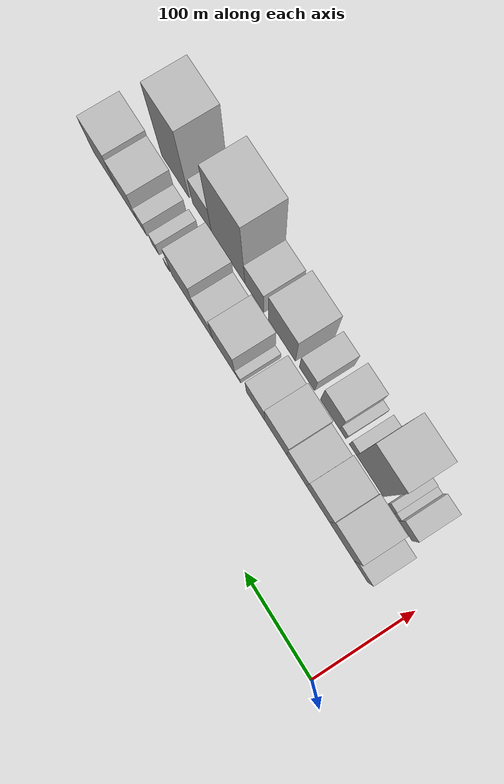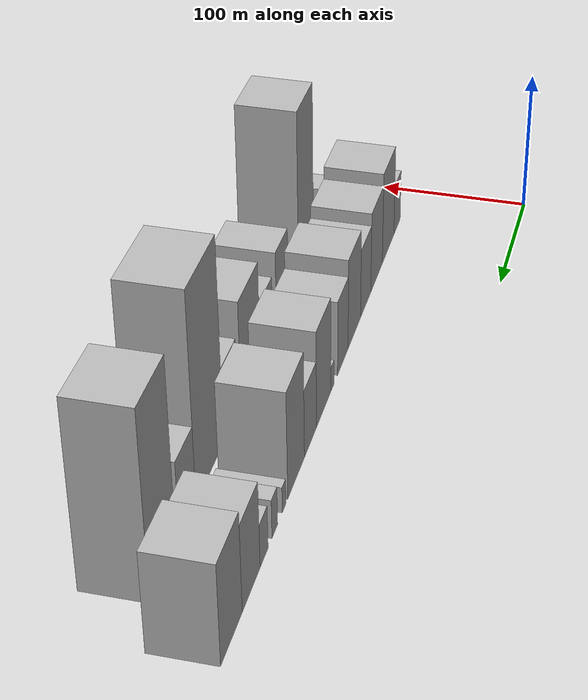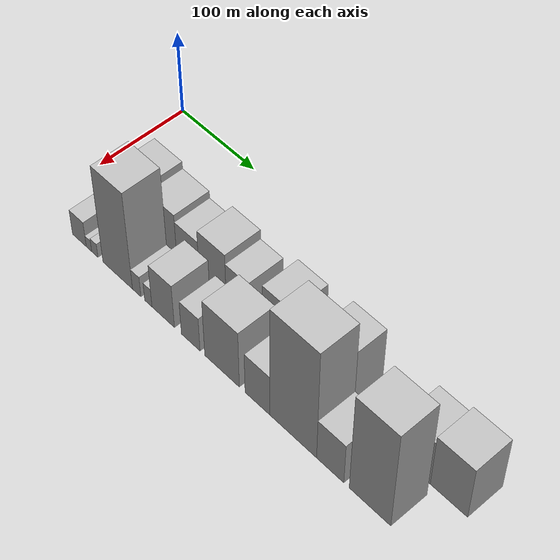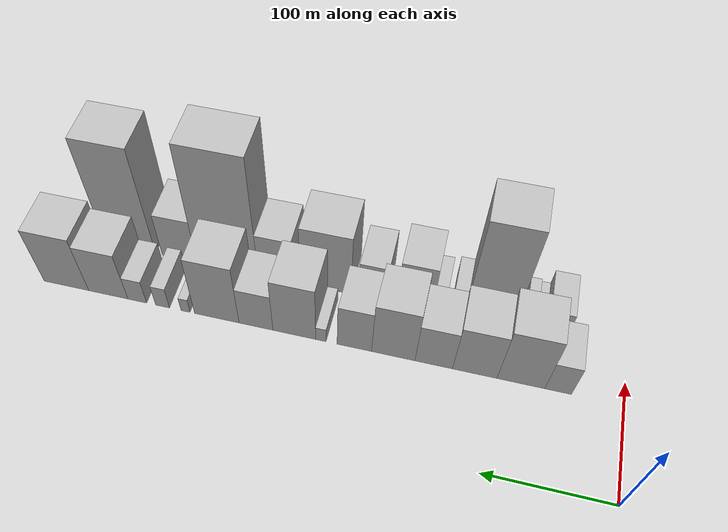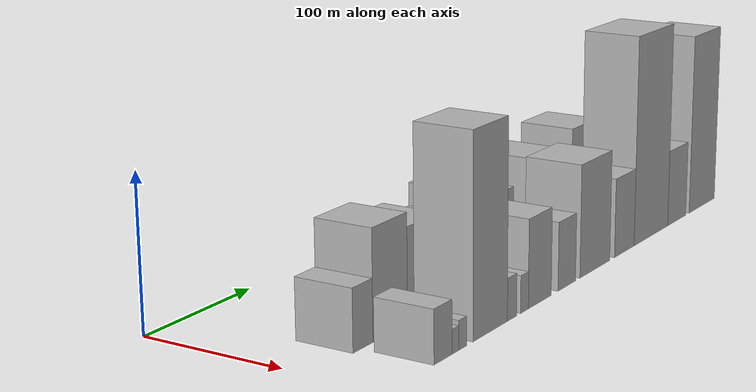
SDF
<sdf version="1.6">
 <world name="default">
  <model name="building_11">
   <static>1</static>
   <pose>100.0000 49.9084 0 0.000000 0.000000 0.000000</pose>
   <link name="link">
    <pose>0 0 19.50 0 0 0</pose>
    <collision name="collision"><geometry><box><size>40.0000 20.4247 39.0000</size></box></geometry></collision>
    <visual name="visual">
     <cast_shadows>0</cast_shadows>
     <geometry><box><size>40.0000 20.4247 39.0000</size></box></geometry>
     <material>
      <script>
       <uri>model://HANNAS_wall/materials/scripts</uri>
       <uri>model://HANNAS_wall/materials/textures</uri>
       <name>vrc/HANNAS_wall</name>
      </script>
     </material>
    </visual>
   </link>
  </model>
  <model name="building_12">
   <static>1</static>
   <pose>100.0000 78.6043 0 0.000000 0.000000 0.000000</pose>
   <link name="link">
    <pose>0 0 34.50 0 0 0</pose>
    <collision name="collision"><geometry><box><size>40.0000 36.9671 69.0000</size></box></geometry></collision>
    <visual name="visual">
     <cast_shadows>0</cast_shadows>
     <geometry><box><size>40.0000 36.9671 69.0000</size></box></geometry>
     <material>
      <script>
       <uri>model://HANNAS_wall/materials/scripts</uri>
       <uri>model://HANNAS_wall/materials/textures</uri>
       <name>vrc/HANNAS_wall</name>
      </script>
     </material>
    </visual>
   </link>
  </model>
  <model name="building_13">
   <static>1</static>
   <pose>100.0000 114.5251 0 0.000000 0.000000 0.000000</pose>
   <link name="link">
    <pose>0 0 30.00 0 0 0</pose>
    <collision name="collision"><geometry><box><size>40.0000 34.8745 60.0000</size></box></geometry></collision>
    <visual name="visual">
     <cast_shadows>0</cast_shadows>
     <geometry><box><size>40.0000 34.8745 60.0000</size></box></geometry>
     <material>
      <script>
       <uri>model://HANNAS_wall/materials/scripts</uri>
       <uri>model://HANNAS_wall/materials/textures</uri>
       <name>vrc/HANNAS_wall</name>
      </script>
     </material>
    </visual>
   </link>
  </model>
  <model name="building_14">
   <static>1</static>
   <pose>100.0000 146.8696 0 0.000000 0.000000 0.000000</pose>
   <link name="link">
    <pose>0 0 25.50 0 0 0</pose>
    <collision name="collision"><geometry><box><size>40.0000 29.8143 51.0000</size></box></geometry></collision>
    <visual name="visual">
     <cast_shadows>0</cast_shadows>
     <geometry><box><size>40.0000 29.8143 51.0000</size></box></geometry>
     <material>
      <script>
       <uri>model://HANNAS_wall/materials/scripts</uri>
       <uri>model://HANNAS_wall/materials/textures</uri>
       <name>vrc/HANNAS_wall</name>
      </script>
     </material>
    </visual>
   </link>
  </model>
  <model name="building_15">
   <static>1</static>
   <pose>100.0000 179.2516 0 0.000000 0.000000 0.000000</pose>
   <link name="link">
    <pose>0 0 33.00 0 0 0</pose>
    <collision name="collision"><geometry><box><size>40.0000 34.9497 66.0000</size></box></geometry></collision>
    <visual name="visual">
     <cast_shadows>0</cast_shadows>
     <geometry><box><size>40.0000 34.9497 66.0000</size></box></geometry>
     <material>
      <script>
       <uri>model://HANNAS_wall/materials/scripts</uri>
       <uri>model://HANNAS_wall/materials/textures</uri>
       <name>vrc/HANNAS_wall</name>
      </script>
     </material>
    </visual>
   </link>
  </model>
  <model name="building_16">
   <static>1</static>
   <pose>100.0000 210.7764 0 0.000000 0.000000 0.000000</pose>
   <link name="link">
    <pose>0 0 27.00 0 0 0</pose>
    <collision name="collision"><geometry><box><size>40.0000 28.0998 54.0000</size></box></geometry></collision>
    <visual name="visual">
     <cast_shadows>0</cast_shadows>
     <geometry><box><size>40.0000 28.0998 54.0000</size></box></geometry>
     <material>
      <script>
       <uri>model://HANNAS_wall/materials/scripts</uri>
       <uri>model://HANNAS_wall/materials/textures</uri>
       <name>vrc/HANNAS_wall</name>
      </script>
     </material>
    </visual>
   </link>
  </model>
  <model name="building_17">
   <static>1</static>
   <pose>100.0000 238.1311 0 0.000000 0.000000 0.000000</pose>
   <link name="link">
    <pose>0 0 9.00 0 0 0</pose>
    <collision name="collision"><geometry><box><size>40.0000 8.6098 18.0000</size></box></geometry></collision>
    <visual name="visual">
     <cast_shadows>0</cast_shadows>
     <geometry><box><size>40.0000 8.6098 18.0000</size></box></geometry>
     <material>
      <script>
       <uri>model://HANNAS_wall/materials/scripts</uri>
       <uri>model://HANNAS_wall/materials/textures</uri>
       <name>vrc/HANNAS_wall</name>
      </script>
     </material>
    </visual>
   </link>
  </model>
  <model name="building_18">
   <static>1</static>
   <pose>100.0000 260.2070 0 0.000000 0.000000 0.000000</pose>
   <link name="link">
    <pose>0 0 34.50 0 0 0</pose>
    <collision name="collision"><geometry><box><size>40.0000 35.5419 69.0000</size></box></geometry></collision>
    <visual name="visual">
     <cast_shadows>0</cast_shadows>
     <geometry><box><size>40.0000 35.5419 69.0000</size></box></geometry>
     <material>
      <script>
       <uri>model://HANNAS_wall/materials/scripts</uri>
       <uri>model://HANNAS_wall/materials/textures</uri>
       <name>vrc/HANNAS_wall</name>
      </script>
     </material>
    </visual>
   </link>
  </model>
  <model name="building_19">
   <static>1</static>
   <pose>100.0000 292.2404 0 0.000000 0.000000 0.000000</pose>
   <link name="link">
    <pose>0 0 24.00 0 0 0</pose>
    <collision name="collision"><geometry><box><size>40.0000 28.5249 48.0000</size></box></geometry></collision>
    <visual name="visual">
     <cast_shadows>0</cast_shadows>
     <geometry><box><size>40.0000 28.5249 48.0000</size></box></geometry>
     <material>
      <script>
       <uri>model://HANNAS_wall/materials/scripts</uri>
       <uri>model://HANNAS_wall/materials/textures</uri>
       <name>vrc/HANNAS_wall</name>
      </script>
     </material>
    </visual>
   </link>
  </model>
  <model name="building_20">
   <static>1</static>
   <pose>100.0000 325.4531 0 0.000000 0.000000 0.000000</pose>
   <link name="link">
    <pose>0 0 37.50 0 0 0</pose>
    <collision name="collision"><geometry><box><size>40.0000 37.9005 75.0000</size></box></geometry></collision>
    <visual name="visual">
     <cast_shadows>0</cast_shadows>
     <geometry><box><size>40.0000 37.9005 75.0000</size></box></geometry>
     <material>
      <script>
       <uri>model://HANNAS_wall/materials/scripts</uri>
       <uri>model://HANNAS_wall/materials/textures</uri>
       <name>vrc/HANNAS_wall</name>
      </script>
     </material>
    </visual>
   </link>
  </model>
  <model name="building_21">
   <static>1</static>
   <pose>100.0000 352.2698 0 0.000000 0.000000 0.000000</pose>
   <link name="link">
    <pose>0 0 9.00 0 0 0</pose>
    <collision name="collision"><geometry><box><size>40.0000 7.7330 18.0000</size></box></geometry></collision>
    <visual name="visual">
     <cast_shadows>0</cast_shadows>
     <geometry><box><size>40.0000 7.7330 18.0000</size></box></geometry>
     <material>
      <script>
       <uri>model://HANNAS_wall/materials/scripts</uri>
       <uri>model://HANNAS_wall/materials/textures</uri>
       <name>vrc/HANNAS_wall</name>
      </script>
     </material>
    </visual>
   </link>
  </model>
  <model name="building_22">
   <static>1</static>
   <pose>100.0000 372.1016 0 0.000000 0.000000 0.000000</pose>
   <link name="link">
    <pose>0 0 13.50 0 0 0</pose>
    <collision name="collision"><geometry><box><size>40.0000 11.9305 27.0000</size></box></geometry></collision>
    <visual name="visual">
     <cast_shadows>0</cast_shadows>
     <geometry><box><size>40.0000 11.9305 27.0000</size></box></geometry>
     <material>
      <script>
       <uri>model://HANNAS_wall/materials/scripts</uri>
       <uri>model://HANNAS_wall/materials/textures</uri>
       <name>vrc/HANNAS_wall</name>
      </script>
     </material>
    </visual>
   </link>
  </model>
  <model name="building_23">
   <static>1</static>
   <pose>100.0000 394.2384 0 0.000000 0.000000 0.000000</pose>
   <link name="link">
    <pose>0 0 15.00 0 0 0</pose>
    <collision name="collision"><geometry><box><size>40.0000 16.3432 30.0000</size></box></geometry></collision>
    <visual name="visual">
     <cast_shadows>0</cast_shadows>
     <geometry><box><size>40.0000 16.3432 30.0000</size></box></geometry>
     <material>
      <script>
       <uri>model://HANNAS_wall/materials/scripts</uri>
       <uri>model://HANNAS_wall/materials/textures</uri>
       <name>vrc/HANNAS_wall</name>
      </script>
     </material>
    </visual>
   </link>
  </model>
  <model name="building_24">
   <static>1</static>
   <pose>100.0000 419.7892 0 0.000000 0.000000 0.000000</pose>
   <link name="link">
    <pose>0 0 30.00 0 0 0</pose>
    <collision name="collision"><geometry><box><size>40.0000 34.7585 60.0000</size></box></geometry></collision>
    <visual name="visual">
     <cast_shadows>0</cast_shadows>
     <geometry><box><size>40.0000 34.7585 60.0000</size></box></geometry>
     <material>
      <script>
       <uri>model://HANNAS_wall/materials/scripts</uri>
       <uri>model://HANNAS_wall/materials/textures</uri>
       <name>vrc/HANNAS_wall</name>
      </script>
     </material>
    </visual>
   </link>
  </model>
  <model name="building_25">
   <static>1</static>
   <pose>100.0000 457.1596 0 0.000000 0.000000 0.000000</pose>
   <link name="link">
    <pose>0 0 34.50 0 0 0</pose>
    <collision name="collision"><geometry><box><size>40.0000 39.9823 69.0000</size></box></geometry></collision>
    <visual name="visual">
     <cast_shadows>0</cast_shadows>
     <geometry><box><size>40.0000 39.9823 69.0000</size></box></geometry>
     <material>
      <script>
       <uri>model://HANNAS_wall/materials/scripts</uri>
       <uri>model://HANNAS_wall/materials/textures</uri>
       <name>vrc/HANNAS_wall</name>
      </script>
     </material>
    </visual>
   </link>
  </model>
  <model name="building_41">
   <static>1</static>
   <pose>149.0000 57.3391 0 0.000000 0.000000 0.000000</pose>
   <link name="link">
    <pose>0 0 16.50 0 0 0</pose>
    <collision name="collision"><geometry><box><size>40.0000 19.3725 33.0000</size></box></geometry></collision>
    <visual name="visual">
     <cast_shadows>0</cast_shadows>
     <geometry><box><size>40.0000 19.3725 33.0000</size></box></geometry>
     <material>
      <script>
       <uri>model://HANNAS_wall/materials/scripts</uri>
       <uri>model://HANNAS_wall/materials/textures</uri>
       <name>vrc/HANNAS_wall</name>
      </script>
     </material>
    </visual>
   </link>
  </model>
  <model name="building_42">
   <static>1</static>
   <pose>149.0000 70.7696 0 0.000000 0.000000 0.000000</pose>
   <link name="link">
    <pose>0 0 7.50 0 0 0</pose>
    <collision name="collision"><geometry><box><size>40.0000 7.4886 15.0000</size></box></geometry></collision>
    <visual name="visual">
     <cast_shadows>0</cast_shadows>
     <geometry><box><size>40.0000 7.4886 15.0000</size></box></geometry>
     <material>
      <script>
       <uri>model://HANNAS_wall/materials/scripts</uri>
       <uri>model://HANNAS_wall/materials/textures</uri>
       <name>vrc/HANNAS_wall</name>
      </script>
     </material>
    </visual>
   </link>
  </model>
  <model name="building_43">
   <static>1</static>
   <pose>149.0000 78.9026 0 0.000000 0.000000 0.000000</pose>
   <link name="link">
    <pose>0 0 9.00 0 0 0</pose>
    <collision name="collision"><geometry><box><size>40.0000 8.7774 18.0000</size></box></geometry></collision>
    <visual name="visual">
     <cast_shadows>0</cast_shadows>
     <geometry><box><size>40.0000 8.7774 18.0000</size></box></geometry>
     <material>
      <script>
       <uri>model://HANNAS_wall/materials/scripts</uri>
       <uri>model://HANNAS_wall/materials/textures</uri>
       <name>vrc/HANNAS_wall</name>
      </script>
     </material>
    </visual>
   </link>
  </model>
  <model name="building_44">
   <static>1</static>
   <pose>149.0000 110.3941 0 0.000000 0.000000 0.000000</pose>
   <link name="link">
    <pose>0 0 63.00 0 0 0</pose>
    <collision name="collision"><geometry><box><size>40.0000 40.2055 126.0000</size></box></geometry></collision>
    <visual name="visual">
     <cast_shadows>0</cast_shadows>
     <geometry><box><size>40.0000 40.2055 126.0000</size></box></geometry>
     <material>
      <script>
       <uri>model://HANNAS_wall/materials/scripts</uri>
       <uri>model://HANNAS_wall/materials/textures</uri>
       <name>vrc/HANNAS_wall</name>
      </script>
     </material>
    </visual>
   </link>
  </model>
  <model name="building_45">
   <static>1</static>
   <pose>149.0000 136.1713 0 0.000000 0.000000 0.000000</pose>
   <link name="link">
    <pose>0 0 13.50 0 0 0</pose>
    <collision name="collision"><geometry><box><size>40.0000 11.3490 27.0000</size></box></geometry></collision>
    <visual name="visual">
     <cast_shadows>0</cast_shadows>
     <geometry><box><size>40.0000 11.3490 27.0000</size></box></geometry>
     <material>
      <script>
       <uri>model://HANNAS_wall/materials/scripts</uri>
       <uri>model://HANNAS_wall/materials/textures</uri>
       <name>vrc/HANNAS_wall</name>
      </script>
     </material>
    </visual>
   </link>
  </model>
  <model name="building_46">
   <static>1</static>
   <pose>149.0000 151.6759 0 0.000000 0.000000 0.000000</pose>
   <link name="link">
    <pose>0 0 12.00 0 0 0</pose>
    <collision name="collision"><geometry><box><size>40.0000 9.6601 24.0000</size></box></geometry></collision>
    <visual name="visual">
     <cast_shadows>0</cast_shadows>
     <geometry><box><size>40.0000 9.6601 24.0000</size></box></geometry>
     <material>
      <script>
       <uri>model://HANNAS_wall/materials/scripts</uri>
       <uri>model://HANNAS_wall/materials/textures</uri>
       <name>vrc/HANNAS_wall</name>
      </script>
     </material>
    </visual>
   </link>
  </model>
  <model name="building_47">
   <static>1</static>
   <pose>149.0000 171.2269 0 0.000000 0.000000 0.000000</pose>
   <link name="link">
    <pose>0 0 28.50 0 0 0</pose>
    <collision name="collision"><geometry><box><size>40.0000 29.4419 57.0000</size></box></geometry></collision>
    <visual name="visual">
     <cast_shadows>0</cast_shadows>
     <geometry><box><size>40.0000 29.4419 57.0000</size></box></geometry>
     <material>
      <script>
       <uri>model://HANNAS_wall/materials/scripts</uri>
       <uri>model://HANNAS_wall/materials/textures</uri>
       <name>vrc/HANNAS_wall</name>
      </script>
     </material>
    </visual>
   </link>
  </model>
  <model name="building_48">
   <static>1</static>
   <pose>149.0000 206.8574 0 0.000000 0.000000 0.000000</pose>
   <link name="link">
    <pose>0 0 22.50 0 0 0</pose>
    <collision name="collision"><geometry><box><size>40.0000 23.8192 45.0000</size></box></geometry></collision>
    <visual name="visual">
     <cast_shadows>0</cast_shadows>
     <geometry><box><size>40.0000 23.8192 45.0000</size></box></geometry>
     <material>
      <script>
       <uri>model://HANNAS_wall/materials/scripts</uri>
       <uri>model://HANNAS_wall/materials/textures</uri>
       <name>vrc/HANNAS_wall</name>
      </script>
     </material>
    </visual>
   </link>
  </model>
  <model name="building_49">
   <static>1</static>
   <pose>149.0000 246.2679 0 0.000000 0.000000 0.000000</pose>
   <link name="link">
    <pose>0 0 37.50 0 0 0</pose>
    <collision name="collision"><geometry><box><size>40.0000 43.0018 75.0000</size></box></geometry></collision>
    <visual name="visual">
     <cast_shadows>0</cast_shadows>
     <geometry><box><size>40.0000 43.0018 75.0000</size></box></geometry>
     <material>
      <script>
       <uri>model://HANNAS_wall/materials/scripts</uri>
       <uri>model://HANNAS_wall/materials/textures</uri>
       <name>vrc/HANNAS_wall</name>
      </script>
     </material>
    </visual>
   </link>
  </model>
  <model name="building_50">
   <static>1</static>
   <pose>149.0000 289.7875 0 0.000000 0.000000 0.000000</pose>
   <link name="link">
    <pose>0 0 27.00 0 0 0</pose>
    <collision name="collision"><geometry><box><size>40.0000 30.0374 54.0000</size></box></geometry></collision>
    <visual name="visual">
     <cast_shadows>0</cast_shadows>
     <geometry><box><size>40.0000 30.0374 54.0000</size></box></geometry>
     <material>
      <script>
       <uri>model://HANNAS_wall/materials/scripts</uri>
       <uri>model://HANNAS_wall/materials/textures</uri>
       <name>vrc/HANNAS_wall</name>
      </script>
     </material>
    </visual>
   </link>
  </model>
  <model name="building_51">
   <static>1</static>
   <pose>149.0000 332.1109 0 0.000000 0.000000 0.000000</pose>
   <link name="link">
    <pose>0 0 72.00 0 0 0</pose>
    <collision name="collision"><geometry><box><size>40.0000 54.6095 144.0000</size></box></geometry></collision>
    <visual name="visual">
     <cast_shadows>0</cast_shadows>
     <geometry><box><size>40.0000 54.6095 144.0000</size></box></geometry>
     <material>
      <script>
       <uri>model://HANNAS_wall/materials/scripts</uri>
       <uri>model://HANNAS_wall/materials/textures</uri>
       <name>vrc/HANNAS_wall</name>
      </script>
     </material>
    </visual>
   </link>
  </model>
  <model name="building_52">
   <static>1</static>
   <pose>149.0000 374.8829 0 0.000000 0.000000 0.000000</pose>
   <link name="link">
    <pose>0 0 27.00 0 0 0</pose>
    <collision name="collision"><geometry><box><size>40.0000 30.9345 54.0000</size></box></geometry></collision>
    <visual name="visual">
     <cast_shadows>0</cast_shadows>
     <geometry><box><size>40.0000 30.9345 54.0000</size></box></geometry>
     <material>
      <script>
       <uri>model://HANNAS_wall/materials/scripts</uri>
       <uri>model://HANNAS_wall/materials/textures</uri>
       <name>vrc/HANNAS_wall</name>
      </script>
     </material>
    </visual>
   </link>
  </model>
  <model name="building_53">
   <static>1</static>
   <pose>149.0000 419.2521 0 0.000000 0.000000 0.000000</pose>
   <link name="link">
    <pose>0 0 64.50 0 0 0</pose>
    <collision name="collision"><geometry><box><size>40.0000 45.8039 129.0000</size></box></geometry></collision>
    <visual name="visual">
     <cast_shadows>0</cast_shadows>
     <geometry><box><size>40.0000 45.8039 129.0000</size></box></geometry>
     <material>
      <script>
       <uri>model://HANNAS_wall/materials/scripts</uri>
       <uri>model://HANNAS_wall/materials/textures</uri>
       <name>vrc/HANNAS_wall</name>
      </script>
     </material>
    </visual>
   </link>
  </model>
 </world>
</sdf>
